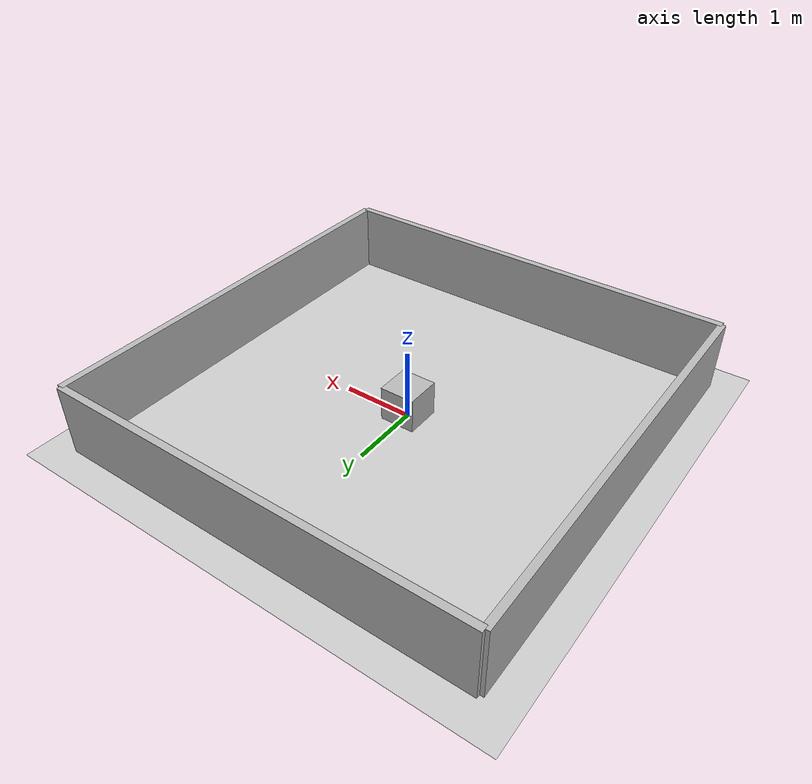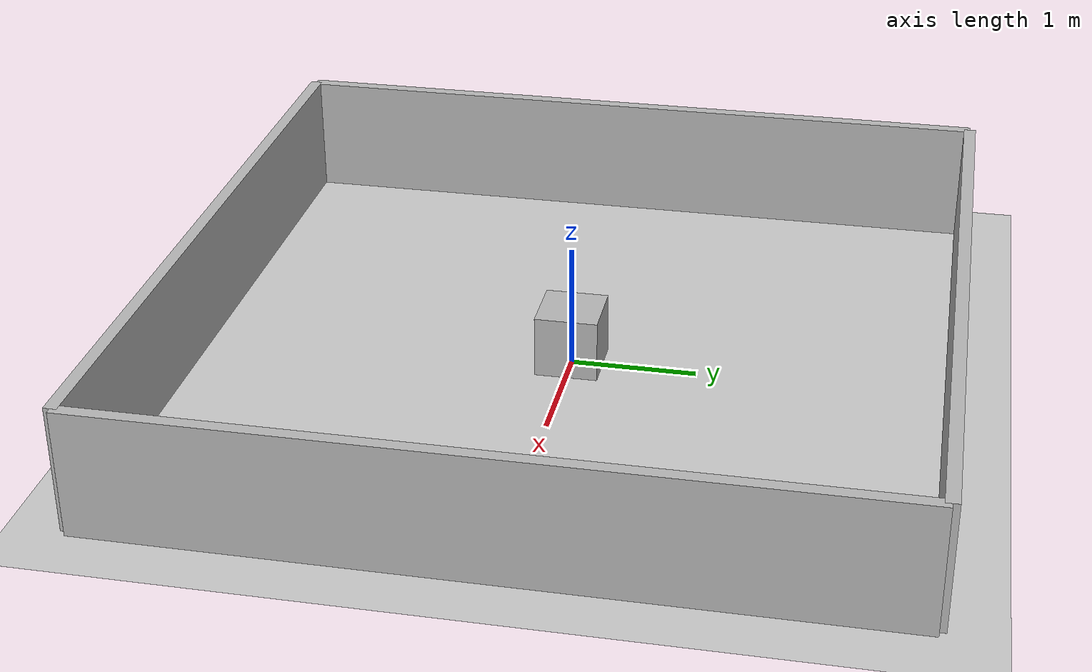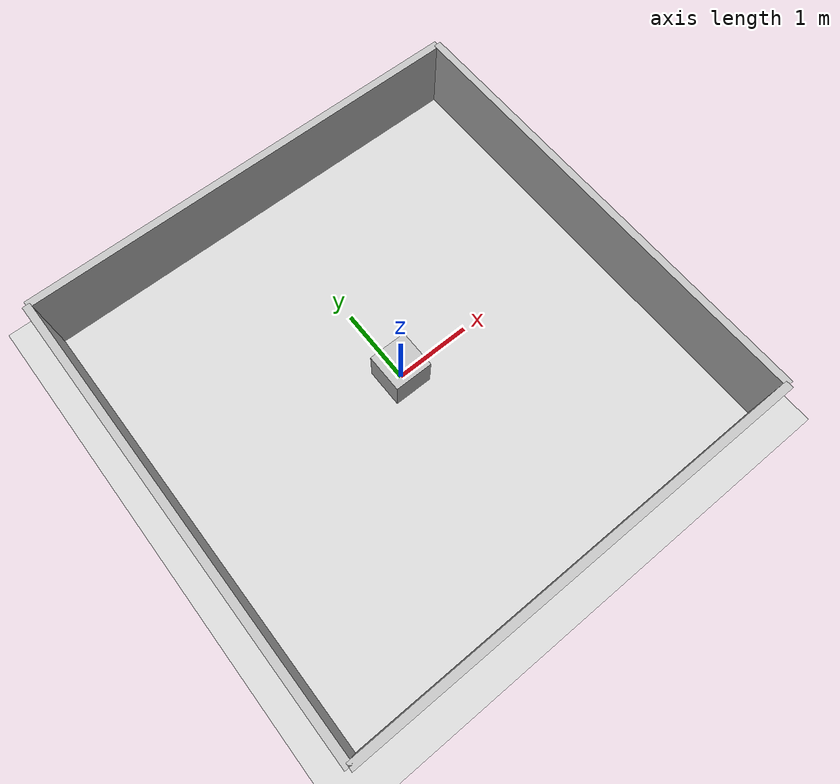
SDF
<?xml version="1.0" ?>
<sdf version="1.6">
  <world name="room">
    <include><uri>model://ground_plane</uri></include>
    <include><uri>model://sun</uri></include>

    <model name="wall_north">
      <static>true</static>
      <pose>0 3 0.5 0 0 0</pose>
      <link name="link">
        <collision name="collision">
          <geometry><box><size>6 0.1 1</size></box></geometry>
        </collision>
        <visual name="visual">
          <geometry><box><size>6 0.1 1</size></box></geometry>
        </visual>
      </link>
    </model>

    <model name="wall_south">
      <static>true</static>
      <pose>0 -3 0.5 0 0 0</pose>
      <link name="link">
        <collision name="collision">
          <geometry><box><size>6 0.1 1</size></box></geometry>
        </collision>
        <visual name="visual">
          <geometry><box><size>6 0.1 1</size></box></geometry>
        </visual>
      </link>
    </model>

    <model name="wall_east">
      <static>true</static>
      <pose>3 0 0.5 0 0 0</pose>
      <link name="link">
        <collision name="collision">
          <geometry><box><size>0.1 6 1</size></box></geometry>
        </collision>
        <visual name="visual">
          <geometry><box><size>0.1 6 1</size></box></geometry>
        </visual>
      </link>
    </model>

    <model name="wall_west">
      <static>true</static>
      <pose>-3 0 0.5 0 0 0</pose>
      <link name="link">
        <collision name="collision">
          <geometry><box><size>0.1 6 1</size></box></geometry>
        </collision>
        <visual name="visual">
          <geometry><box><size>0.1 6 1</size></box></geometry>
        </visual>
      </link>
    </model>

    <model name="box">
      <static>true</static>
      <pose>0 0 0.25 0 0 0</pose>
      <link name="link">
        <collision name="collision">
          <geometry><box><size>0.5 0.5 0.5</size></box></geometry>
        </collision>
        <visual name="visual">
          <geometry><box><size>0.5 0.5 0.5</size></box></geometry>
        </visual>
      </link>
    </model>
  </world>
</sdf>
